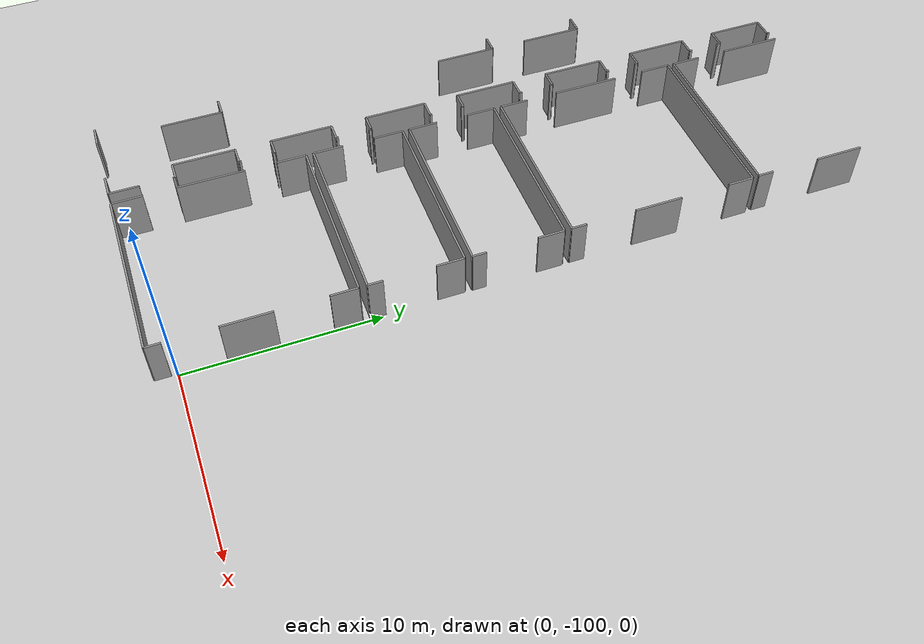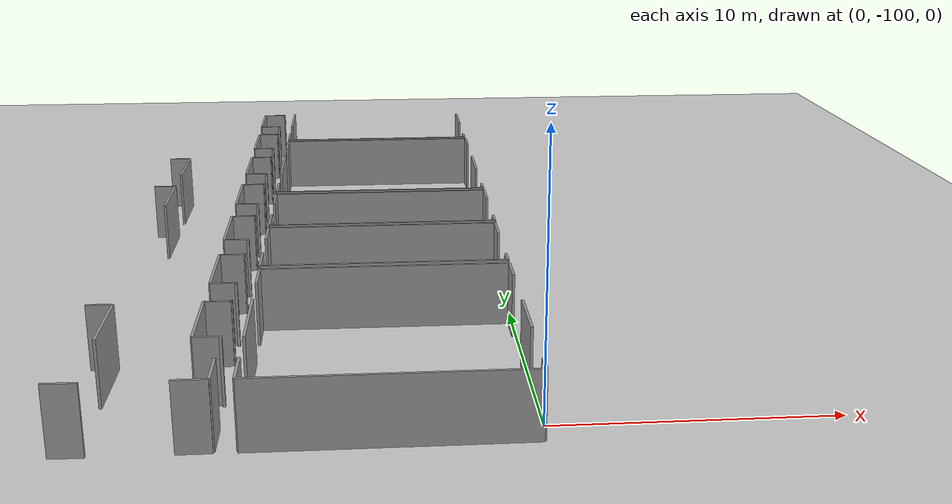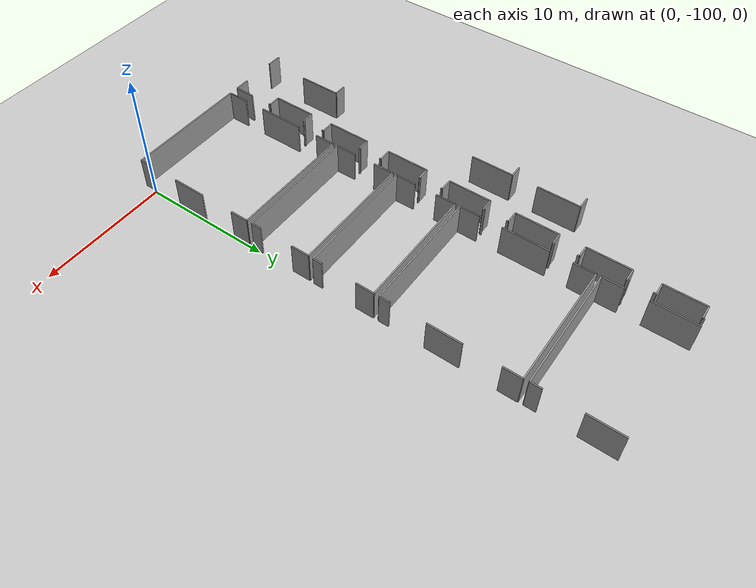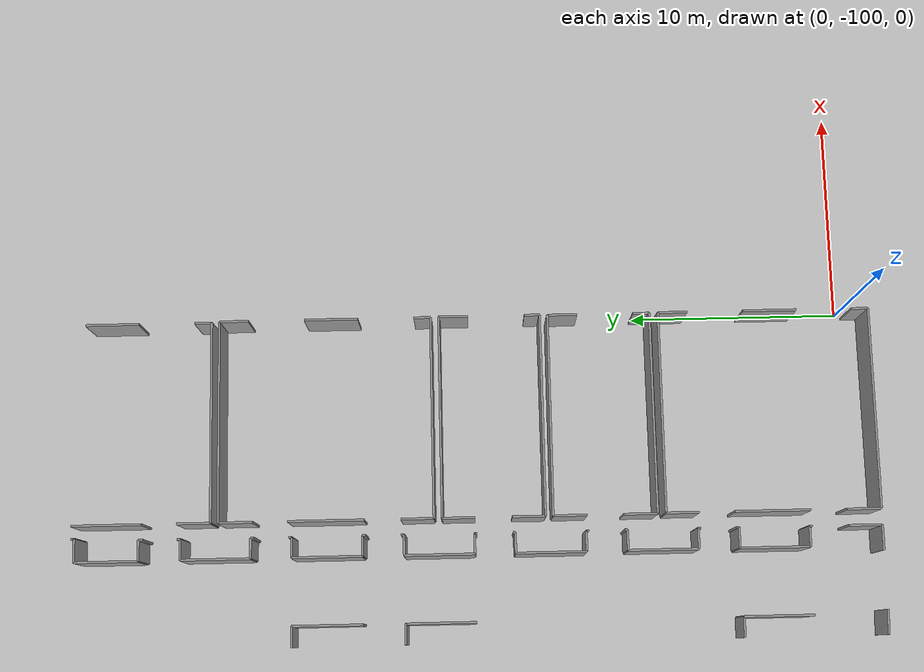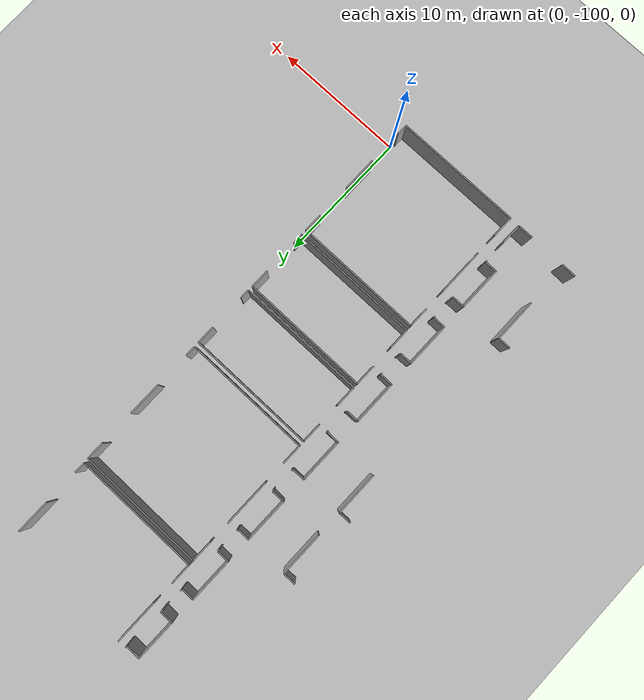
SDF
<sdf version="1.6">
 <world name="default">
  <model name="ground_plane">
   <static>1</static>
   <link name="link">
    <collision name="collision">
     <geometry><plane><normal>0 0 1</normal><size>100 100</size></plane></geometry>
     <surface><friction><ode><mu>100</mu><mu2>50</mu2></ode></friction></surface>
    </collision>
    <visual name="visual">
     <cast_shadows>0</cast_shadows>
     <geometry><plane><normal>0 0 1</normal><size>100 100</size></plane></geometry>
     <material>
      <script><uri>file://media/materials/scripts/gazebo.material</uri><name>Gazebo/Grey</name></script>
     </material>
    </visual>
   </link>
  </model>
  <model name="0510045926_A-40">
   <static>1</static>
   <link name="Wall_1629">
    <collision name="Wall_1629_Collision">
     <geometry><box><size>1.61870252502 0.1 2.5</size></box></geometry>
     <pose>0.809351262509 0 1.25 0 0 0</pose>
    </collision>
    <visual name="Wall_1629_Visual">
     <pose>0.809351262509 0 1.25 0 0 0</pose>
     <geometry><box><size>1.61870252502 0.1 2.5</size></box></geometry>
     <material>
      <script><uri>file://media/materials/scripts/gazebo.material</uri><name>Gazebo/Grey</name></script>
      <ambient>1 1 1 1</ambient>
     </material>
    </visual>
    <pose>124.256322065 -202.213233661 0 0 0 1.57079632679</pose>
   </link>
   <link name="Wall_1630">
    <collision name="Wall_1630_Collision">
     <geometry><box><size>3.54505244855 0.1 2.5</size></box></geometry>
     <pose>1.77252622428 0 1.25 0 0 0</pose>
    </collision>
    <visual name="Wall_1630_Visual">
     <pose>1.77252622428 0 1.25 0 0 0</pose>
     <geometry><box><size>3.54505244855 0.1 2.5</size></box></geometry>
     <material>
      <script><uri>file://media/materials/scripts/gazebo.material</uri><name>Gazebo/Grey</name></script>
      <ambient>1 1 1 1</ambient>
     </material>
    </visual>
    <pose>124.256322065 -198.91922352 0 0 0 1.57079632679</pose>
   </link>
   <link name="Wall_1631">
    <collision name="Wall_1631_Collision">
     <geometry><box><size>1.55625924116 0.1 2.5</size></box></geometry>
     <pose>0.778129620581 0 1.25 0 0 0</pose>
    </collision>
    <visual name="Wall_1631_Visual">
     <pose>0.778129620581 0 1.25 0 0 0</pose>
     <geometry><box><size>1.55625924116 0.1 2.5</size></box></geometry>
     <material>
      <script><uri>file://media/materials/scripts/gazebo.material</uri><name>Gazebo/Grey</name></script>
      <ambient>1 1 1 1</ambient>
     </material>
    </visual>
    <pose>124.256322065 -193.702670973 0 0 0 1.57079632679</pose>
   </link>
   <link name="Wall_1632">
    <collision name="Wall_1632_Collision">
     <geometry><box><size>9.55991445778 0.1 2.5</size></box></geometry>
     <pose>4.77995722889 0 1.25 0 0 0</pose>
    </collision>
    <visual name="Wall_1632_Visual">
     <pose>4.77995722889 0 1.25 0 0 0</pose>
     <geometry><box><size>9.55991445778 0.1 2.5</size></box></geometry>
     <material>
      <script><uri>file://media/materials/scripts/gazebo.material</uri><name>Gazebo/Grey</name></script>
      <ambient>1 1 1 1</ambient>
     </material>
    </visual>
    <pose>124.256322065 -192.146411732 0 0 0 0.0</pose>
   </link>
   <link name="Wall_1633">
    <collision name="Wall_1633_Collision">
     <geometry><box><size>1.40015103152 0.1 2.5</size></box></geometry>
     <pose>0.70007551576 0 1.25 0 0 0</pose>
    </collision>
    <visual name="Wall_1633_Visual">
     <pose>0.70007551576 0 1.25 0 0 0</pose>
     <geometry><box><size>1.40015103152 0.1 2.5</size></box></geometry>
     <material>
      <script><uri>file://media/materials/scripts/gazebo.material</uri><name>Gazebo/Grey</name></script>
      <ambient>1 1 1 1</ambient>
     </material>
    </visual>
    <pose>133.816236523 -192.146411732 0 0 0 -1.57079632679</pose>
   </link>
   <link name="Wall_1634">
    <collision name="Wall_1634_Collision">
     <geometry><box><size>2.56423598992 0.1 2.5</size></box></geometry>
     <pose>1.28211799496 0 1.25 0 0 0</pose>
    </collision>
    <visual name="Wall_1634_Visual">
     <pose>1.28211799496 0 1.25 0 0 0</pose>
     <geometry><box><size>2.56423598992 0.1 2.5</size></box></geometry>
     <material>
      <script><uri>file://media/materials/scripts/gazebo.material</uri><name>Gazebo/Grey</name></script>
      <ambient>1 1 1 1</ambient>
     </material>
    </visual>
    <pose>133.816236523 -196.208525031 0 0 0 -1.57079632679</pose>
   </link>
   <link name="Wall_1635">
    <collision name="Wall_1635_Collision">
     <geometry><box><size>0.791202096673 0.1 2.5</size></box></geometry>
     <pose>0.395601048336 0 1.25 0 0 0</pose>
    </collision>
    <visual name="Wall_1635_Visual">
     <pose>0.395601048336 0 1.25 0 0 0</pose>
     <geometry><box><size>0.791202096673 0.1 2.5</size></box></geometry>
     <material>
      <script><uri>file://media/materials/scripts/gazebo.material</uri><name>Gazebo/Grey</name></script>
      <ambient>1 1 1 1</ambient>
     </material>
    </visual>
    <pose>133.816236523 -201.403247812 0 0 0 -1.57079632679</pose>
   </link>
   <link name="Wall_1636">
    <collision name="Wall_1636_Collision">
     <geometry><box><size>9.55993291134 0.1 2.5</size></box></geometry>
     <pose>4.77996645567 0 1.25 0 0 0</pose>
    </collision>
    <visual name="Wall_1636_Visual">
     <pose>4.77996645567 0 1.25 0 0 0</pose>
     <geometry><box><size>9.55993291134 0.1 2.5</size></box></geometry>
     <material>
      <script><uri>file://media/materials/scripts/gazebo.material</uri><name>Gazebo/Grey</name></script>
      <ambient>1 1 1 1</ambient>
     </material>
    </visual>
    <pose>133.816236523 -202.194449909 0 0 0 -3.13962781092</pose>
   </link>
   <link name="Wall_1637">
    <collision name="Wall_1637_Collision">
     <geometry><box><size>1.58748088309 0.1 2.5</size></box></geometry>
     <pose>0.793740441545 0 1.25 0 0 0</pose>
    </collision>
    <visual name="Wall_1637_Visual">
     <pose>0.793740441545 0 1.25 0 0 0</pose>
     <geometry><box><size>1.58748088309 0.1 2.5</size></box></geometry>
     <material>
      <script><uri>file://media/materials/scripts/gazebo.material</uri><name>Gazebo/Grey</name></script>
      <ambient>1 1 1 1</ambient>
     </material>
    </visual>
    <pose>124.237792148 -191.753475946 0 0 0 1.57079632679</pose>
   </link>
   <link name="Wall_1638">
    <collision name="Wall_1638_Collision">
     <geometry><box><size>1.5892577245 0.1 2.5</size></box></geometry>
     <pose>0.79462886225 0 1.25 0 0 0</pose>
    </collision>
    <visual name="Wall_1638_Visual">
     <pose>0.79462886225 0 1.25 0 0 0</pose>
     <geometry><box><size>1.5892577245 0.1 2.5</size></box></geometry>
     <material>
      <script><uri>file://media/materials/scripts/gazebo.material</uri><name>Gazebo/Grey</name></script>
      <ambient>1 1 1 1</ambient>
     </material>
    </visual>
    <pose>124.237792148 -188.455404454 0 0 0 1.57079632679</pose>
   </link>
   <link name="Wall_1639">
    <collision name="Wall_1639_Collision">
     <geometry><box><size>9.57032167175 0.1 2.5</size></box></geometry>
     <pose>4.78516083588 0 1.25 0 0 0</pose>
    </collision>
    <visual name="Wall_1639_Visual">
     <pose>4.78516083588 0 1.25 0 0 0</pose>
     <geometry><box><size>9.57032167175 0.1 2.5</size></box></geometry>
     <material>
      <script><uri>file://media/materials/scripts/gazebo.material</uri><name>Gazebo/Grey</name></script>
      <ambient>1 1 1 1</ambient>
     </material>
    </visual>
    <pose>124.237792148 -186.866146729 0 0 0 0.0</pose>
   </link>
   <link name="Wall_1640">
    <collision name="Wall_1640_Collision">
     <geometry><box><size>1.42781899063 0.1 2.5</size></box></geometry>
     <pose>0.713909495314 0 1.25 0 0 0</pose>
    </collision>
    <visual name="Wall_1640_Visual">
     <pose>0.713909495314 0 1.25 0 0 0</pose>
     <geometry><box><size>1.42781899063 0.1 2.5</size></box></geometry>
     <material>
      <script><uri>file://media/materials/scripts/gazebo.material</uri><name>Gazebo/Grey</name></script>
      <ambient>1 1 1 1</ambient>
     </material>
    </visual>
    <pose>133.808113819 -186.866146729 0 0 0 -1.57079632679</pose>
   </link>
   <link name="Wall_1641">
    <collision name="Wall_1641_Collision">
     <geometry><box><size>0.778764206799 0.1 2.5</size></box></geometry>
     <pose>0.389382103399 0 1.25 0 0 0</pose>
    </collision>
    <visual name="Wall_1641_Visual">
     <pose>0.389382103399 0 1.25 0 0 0</pose>
     <geometry><box><size>0.778764206799 0.1 2.5</size></box></geometry>
     <material>
      <script><uri>file://media/materials/scripts/gazebo.material</uri><name>Gazebo/Grey</name></script>
      <ambient>1 1 1 1</ambient>
     </material>
    </visual>
    <pose>133.808113819 -190.952374304 0 0 0 -1.57079632679</pose>
   </link>
   <link name="Wall_1642">
    <collision name="Wall_1642_Collision">
     <geometry><box><size>9.57034773986 0.1 2.5</size></box></geometry>
     <pose>4.78517386993 0 1.25 0 0 0</pose>
    </collision>
    <visual name="Wall_1642_Visual">
     <pose>4.78517386993 0 1.25 0 0 0</pose>
     <geometry><box><size>9.57034773986 0.1 2.5</size></box></geometry>
     <material>
      <script><uri>file://media/materials/scripts/gazebo.material</uri><name>Gazebo/Grey</name></script>
      <ambient>1 1 1 1</ambient>
     </material>
    </visual>
    <pose>133.808113819 -191.731138511 0 0 0 -3.13925862605</pose>
   </link>
   <link name="Wall_1643">
    <collision name="Wall_1643_Collision">
     <geometry><box><size>1.5554977377 0.1 2.5</size></box></geometry>
     <pose>0.77774886885 0 1.25 0 0 0</pose>
    </collision>
    <visual name="Wall_1643_Visual">
     <pose>0.77774886885 0 1.25 0 0 0</pose>
     <geometry><box><size>1.5554977377 0.1 2.5</size></box></geometry>
     <material>
      <script><uri>file://media/materials/scripts/gazebo.material</uri><name>Gazebo/Grey</name></script>
      <ambient>1 1 1 1</ambient>
     </material>
    </visual>
    <pose>124.232715458 -186.508240102 0 0 0 1.57079632679</pose>
   </link>
   <link name="Wall_1644">
    <collision name="Wall_1644_Collision">
     <geometry><box><size>1.54915187552 0.1 2.5</size></box></geometry>
     <pose>0.77457593776 0 1.25 0 0 0</pose>
    </collision>
    <visual name="Wall_1644_Visual">
     <pose>0.77457593776 0 1.25 0 0 0</pose>
     <geometry><box><size>1.54915187552 0.1 2.5</size></box></geometry>
     <material>
      <script><uri>file://media/materials/scripts/gazebo.material</uri><name>Gazebo/Grey</name></script>
      <ambient>1 1 1 1</ambient>
     </material>
    </visual>
    <pose>124.232715458 -183.222606499 0 0 0 1.57079632679</pose>
   </link>
   <link name="Wall_1645">
    <collision name="Wall_1645_Collision">
     <geometry><box><size>9.59824346535 0.1 2.5</size></box></geometry>
     <pose>4.79912173267 0 1.25 0 0 0</pose>
    </collision>
    <visual name="Wall_1645_Visual">
     <pose>4.79912173267 0 1.25 0 0 0</pose>
     <geometry><box><size>9.59824346535 0.1 2.5</size></box></geometry>
     <material>
      <script><uri>file://media/materials/scripts/gazebo.material</uri><name>Gazebo/Grey</name></script>
      <ambient>1 1 1 1</ambient>
     </material>
    </visual>
    <pose>124.232715458 -181.673454624 0 0 0 0.0</pose>
   </link>
   <link name="Wall_1646">
    <collision name="Wall_1646_Collision">
     <geometry><box><size>1.3965973487 0.1 2.5</size></box></geometry>
     <pose>0.698298674349 0 1.25 0 0 0</pose>
    </collision>
    <visual name="Wall_1646_Visual">
     <pose>0.698298674349 0 1.25 0 0 0</pose>
     <geometry><box><size>1.3965973487 0.1 2.5</size></box></geometry>
     <material>
      <script><uri>file://media/materials/scripts/gazebo.material</uri><name>Gazebo/Grey</name></script>
      <ambient>1 1 1 1</ambient>
     </material>
    </visual>
    <pose>133.830958923 -181.673454624 0 0 0 -1.57079632679</pose>
   </link>
   <link name="Wall_1647">
    <collision name="Wall_1647_Collision">
     <geometry><box><size>0.733073999099 0.1 2.5</size></box></geometry>
     <pose>0.366536999549 0 1.25 0 0 0</pose>
    </collision>
    <visual name="Wall_1647_Visual">
     <pose>0.366536999549 0 1.25 0 0 0</pose>
     <geometry><box><size>0.733073999099 0.1 2.5</size></box></geometry>
     <material>
      <script><uri>file://media/materials/scripts/gazebo.material</uri><name>Gazebo/Grey</name></script>
      <ambient>1 1 1 1</ambient>
     </material>
    </visual>
    <pose>133.830958923 -185.760189868 0 0 0 -1.57079632679</pose>
   </link>
   <link name="Wall_1648">
    <collision name="Wall_1648_Collision">
     <geometry><box><size>9.59825514913 0.1 2.5</size></box></geometry>
     <pose>4.79912757456 0 1.25 0 0 0</pose>
    </collision>
    <visual name="Wall_1648_Visual">
     <pose>4.79912757456 0 1.25 0 0 0</pose>
     <geometry><box><size>9.59825514913 0.1 2.5</size></box></geometry>
     <material>
      <script><uri>file://media/materials/scripts/gazebo.material</uri><name>Gazebo/Grey</name></script>
      <ambient>1 1 1 1</ambient>
     </material>
    </visual>
    <pose>133.830958923 -186.493263867 0 0 0 -3.14003234491</pose>
   </link>
   <link name="Wall_1649">
    <collision name="Wall_1649_Collision">
     <geometry><box><size>1.54712119962 0.1 2.5</size></box></geometry>
     <pose>0.773560599811 0 1.25 0 0 0</pose>
    </collision>
    <visual name="Wall_1649_Visual">
     <pose>0.773560599811 0 1.25 0 0 0</pose>
     <geometry><box><size>1.54712119962 0.1 2.5</size></box></geometry>
     <material>
      <script><uri>file://media/materials/scripts/gazebo.material</uri><name>Gazebo/Grey</name></script>
      <ambient>1 1 1 1</ambient>
     </material>
    </visual>
    <pose>124.237030644 -181.289403045 0 0 0 1.57079632679</pose>
   </link>
   <link name="Wall_1650">
    <collision name="Wall_1650_Collision">
     <geometry><box><size>3.55723650394 0.1 2.5</size></box></geometry>
     <pose>1.77861825197 0 1.25 0 0 0</pose>
    </collision>
    <visual name="Wall_1650_Visual">
     <pose>1.77861825197 0 1.25 0 0 0</pose>
     <geometry><box><size>3.55723650394 0.1 2.5</size></box></geometry>
     <material>
      <script><uri>file://media/materials/scripts/gazebo.material</uri><name>Gazebo/Grey</name></script>
      <ambient>1 1 1 1</ambient>
     </material>
    </visual>
    <pose>124.237030644 -178.02229936 0 0 0 1.57079632679</pose>
   </link>
   <link name="Wall_1651">
    <collision name="Wall_1651_Collision">
     <geometry><box><size>1.61565651117 0.1 2.5</size></box></geometry>
     <pose>0.807828255586 0 1.25 0 0 0</pose>
    </collision>
    <visual name="Wall_1651_Visual">
     <pose>0.807828255586 0 1.25 0 0 0</pose>
     <geometry><box><size>1.61565651117 0.1 2.5</size></box></geometry>
     <material>
      <script><uri>file://media/materials/scripts/gazebo.material</uri><name>Gazebo/Grey</name></script>
      <ambient>1 1 1 1</ambient>
     </material>
    </visual>
    <pose>124.237030644 -172.82706891 0 0 0 1.57079632679</pose>
   </link>
   <link name="Wall_1652">
    <collision name="Wall_1652_Collision">
     <geometry><box><size>9.57945971329 0.1 2.5</size></box></geometry>
     <pose>4.78972985665 0 1.25 0 0 0</pose>
    </collision>
    <visual name="Wall_1652_Visual">
     <pose>4.78972985665 0 1.25 0 0 0</pose>
     <geometry><box><size>9.57945971329 0.1 2.5</size></box></geometry>
     <material>
      <script><uri>file://media/materials/scripts/gazebo.material</uri><name>Gazebo/Grey</name></script>
      <ambient>1 1 1 1</ambient>
     </material>
    </visual>
    <pose>124.237030644 -171.211412399 0 0 0 0.0</pose>
   </link>
   <link name="Wall_1653">
    <collision name="Wall_1653_Collision">
     <geometry><box><size>1.38365178985 0.1 2.5</size></box></geometry>
     <pose>0.691825894925 0 1.25 0 0 0</pose>
    </collision>
    <visual name="Wall_1653_Visual">
     <pose>0.691825894925 0 1.25 0 0 0</pose>
     <geometry><box><size>1.38365178985 0.1 2.5</size></box></geometry>
     <material>
      <script><uri>file://media/materials/scripts/gazebo.material</uri><name>Gazebo/Grey</name></script>
      <ambient>1 1 1 1</ambient>
     </material>
    </visual>
    <pose>133.816490357 -171.211412399 0 0 0 -1.57079632679</pose>
   </link>
   <link name="Wall_1654">
    <collision name="Wall_1654_Collision">
     <geometry><box><size>2.56017463813 0.1 2.5</size></box></geometry>
     <pose>1.28008731906 0 1.25 0 0 0</pose>
    </collision>
    <visual name="Wall_1654_Visual">
     <pose>1.28008731906 0 1.25 0 0 0</pose>
     <geometry><box><size>2.56017463813 0.1 2.5</size></box></geometry>
     <material>
      <script><uri>file://media/materials/scripts/gazebo.material</uri><name>Gazebo/Grey</name></script>
      <ambient>1 1 1 1</ambient>
     </material>
    </visual>
    <pose>133.816490357 -175.25499578 0 0 0 -1.57079632679</pose>
   </link>
   <link name="Wall_1655">
    <collision name="Wall_1655_Collision">
     <geometry><box><size>0.803639986547 0.1 2.5</size></box></geometry>
     <pose>0.401819993273 0 1.25 0 0 0</pose>
    </collision>
    <visual name="Wall_1655_Visual">
     <pose>0.401819993273 0 1.25 0 0 0</pose>
     <geometry><box><size>0.803639986547 0.1 2.5</size></box></geometry>
     <material>
      <script><uri>file://media/materials/scripts/gazebo.material</uri><name>Gazebo/Grey</name></script>
      <ambient>1 1 1 1</ambient>
     </material>
    </visual>
    <pose>133.816490357 -180.481955541 0 0 0 -1.57079632679</pose>
   </link>
   <link name="Wall_1656">
    <collision name="Wall_1656_Collision">
     <geometry><box><size>9.57946046997 0.1 2.5</size></box></geometry>
     <pose>4.78973023499 0 1.25 0 0 0</pose>
    </collision>
    <visual name="Wall_1656_Visual">
     <pose>4.78973023499 0 1.25 0 0 0</pose>
     <geometry><box><size>9.57946046997 0.1 2.5</size></box></geometry>
     <material>
      <script><uri>file://media/materials/scripts/gazebo.material</uri><name>Gazebo/Grey</name></script>
      <ambient>1 1 1 1</ambient>
     </material>
    </visual>
    <pose>133.816490357 -181.285595527 0 0 0 -3.1411951868</pose>
   </link>
   <link name="Wall_1657">
    <collision name="Wall_1657_Collision">
     <geometry><box><size>1.57656600014 0.1 2.5</size></box></geometry>
     <pose>0.78828300007 0 1.25 0 0 0</pose>
    </collision>
    <visual name="Wall_1657_Visual">
     <pose>0.78828300007 0 1.25 0 0 0</pose>
     <geometry><box><size>1.57656600014 0.1 2.5</size></box></geometry>
     <material>
      <script><uri>file://media/materials/scripts/gazebo.material</uri><name>Gazebo/Grey</name></script>
      <ambient>1 1 1 1</ambient>
     </material>
    </visual>
    <pose>124.237030644 -170.860105468 0 0 0 1.57079632679</pose>
   </link>
   <link name="Wall_1658">
    <collision name="Wall_1658_Collision">
     <geometry><box><size>3.29477164415 0.1 2.5</size></box></geometry>
     <pose>1.64738582207 0 1.25 0 0 0</pose>
    </collision>
    <visual name="Wall_1658_Visual">
     <pose>1.64738582207 0 1.25 0 0 0</pose>
     <geometry><box><size>3.29477164415 0.1 2.5</size></box></geometry>
     <material>
      <script><uri>file://media/materials/scripts/gazebo.material</uri><name>Gazebo/Grey</name></script>
      <ambient>1 1 1 1</ambient>
     </material>
    </visual>
    <pose>124.237030644 -167.637168984 0 0 0 1.57079632679</pose>
   </link>
   <link name="Wall_1663">
    <collision name="Wall_1663_Collision">
     <geometry><box><size>2.55738245877 0.1 2.5</size></box></geometry>
     <pose>1.27869122938 0 1.25 0 0 0</pose>
    </collision>
    <visual name="Wall_1663_Visual">
     <pose>1.27869122938 0 1.25 0 0 0</pose>
     <geometry><box><size>2.55738245877 0.1 2.5</size></box></geometry>
     <material>
      <script><uri>file://media/materials/scripts/gazebo.material</uri><name>Gazebo/Grey</name></script>
      <ambient>1 1 1 1</ambient>
     </material>
    </visual>
    <pose>133.775115336 -164.8249367 0 0 0 -1.57079632679</pose>
   </link>
   <link name="Wall_1664">
    <collision name="Wall_1664_Collision">
     <geometry><box><size>0.82623125591 0.1 2.5</size></box></geometry>
     <pose>0.413115627955 0 1.25 0 0 0</pose>
    </collision>
    <visual name="Wall_1664_Visual">
     <pose>0.413115627955 0 1.25 0 0 0</pose>
     <geometry><box><size>0.82623125591 0.1 2.5</size></box></geometry>
     <material>
      <script><uri>file://media/materials/scripts/gazebo.material</uri><name>Gazebo/Grey</name></script>
      <ambient>1 1 1 1</ambient>
     </material>
    </visual>
    <pose>133.775115336 -170.02016715 0 0 0 -1.57079632679</pose>
   </link>
   <link name="Wall_1665">
    <collision name="Wall_1665_Collision">
     <geometry><box><size>9.538094541 0.1 2.5</size></box></geometry>
     <pose>4.7690472705 0 1.25 0 0 0</pose>
    </collision>
    <visual name="Wall_1665_Visual">
     <pose>4.7690472705 0 1.25 0 0 0</pose>
     <geometry><box><size>9.538094541 0.1 2.5</size></box></geometry>
     <material>
      <script><uri>file://media/materials/scripts/gazebo.material</uri><name>Gazebo/Grey</name></script>
      <ambient>1 1 1 1</ambient>
     </material>
    </visual>
    <pose>133.775115336 -170.846398406 0 0 0 -3.14015556708</pose>
   </link>
   <link name="Wall_1680">
    <collision name="Wall_1680_Collision">
     <geometry><box><size>3.27548022312 0.1 2.5</size></box></geometry>
     <pose>1.63774011156 0 1.25 0 0 0</pose>
    </collision>
    <visual name="Wall_1680_Visual">
     <pose>1.63774011156 0 1.25 0 0 0</pose>
     <geometry><box><size>3.27548022312 0.1 2.5</size></box></geometry>
     <material>
      <script><uri>file://media/materials/scripts/gazebo.material</uri><name>Gazebo/Grey</name></script>
      <ambient>1 1 1 1</ambient>
     </material>
    </visual>
    <pose>119.401737497 -198.817182056 0 0 0 1.57079632679</pose>
   </link>
   <link name="Wall_1681">
    <collision name="Wall_1681_Collision">
     <geometry><box><size>0.959748196189 0.1 2.5</size></box></geometry>
     <pose>0.479874098094 0 1.25 0 0 0</pose>
    </collision>
    <visual name="Wall_1681_Visual">
     <pose>0.479874098094 0 1.25 0 0 0</pose>
     <geometry><box><size>0.959748196189 0.1 2.5</size></box></geometry>
     <material>
      <script><uri>file://media/materials/scripts/gazebo.material</uri><name>Gazebo/Grey</name></script>
      <ambient>1 1 1 1</ambient>
     </material>
    </visual>
    <pose>119.401737497 -195.541701833 0 0 0 3.14159265359</pose>
   </link>
   <link name="Wall_1695">
    <collision name="Wall_1695_Collision">
     <geometry><box><size>3.27624172658 0.1 2.5</size></box></geometry>
     <pose>1.63812086329 0 1.25 0 0 0</pose>
    </collision>
    <visual name="Wall_1695_Visual">
     <pose>1.63812086329 0 1.25 0 0 0</pose>
     <geometry><box><size>3.27624172658 0.1 2.5</size></box></geometry>
     <material>
      <script><uri>file://media/materials/scripts/gazebo.material</uri><name>Gazebo/Grey</name></script>
      <ambient>1 1 1 1</ambient>
     </material>
    </visual>
    <pose>119.405037345 -183.187069671 0 0 0 1.57079632679</pose>
   </link>
   <link name="Wall_1696">
    <collision name="Wall_1696_Collision">
     <geometry><box><size>0.957463685804 0.1 2.5</size></box></geometry>
     <pose>0.478731842902 0 1.25 0 0 0</pose>
    </collision>
    <visual name="Wall_1696_Visual">
     <pose>0.478731842902 0 1.25 0 0 0</pose>
     <geometry><box><size>0.957463685804 0.1 2.5</size></box></geometry>
     <material>
      <script><uri>file://media/materials/scripts/gazebo.material</uri><name>Gazebo/Grey</name></script>
      <ambient>1 1 1 1</ambient>
     </material>
    </visual>
    <pose>119.405037345 -179.910827945 0 0 0 3.14159265359</pose>
   </link>
   <link name="Wall_1700">
    <collision name="Wall_1700_Collision">
     <geometry><box><size>3.30924020992 0.1 2.5</size></box></geometry>
     <pose>1.65462010496 0 1.25 0 0 0</pose>
    </collision>
    <visual name="Wall_1700_Visual">
     <pose>1.65462010496 0 1.25 0 0 0</pose>
     <geometry><box><size>3.30924020992 0.1 2.5</size></box></geometry>
     <material>
      <script><uri>file://media/materials/scripts/gazebo.material</uri><name>Gazebo/Grey</name></script>
      <ambient>1 1 1 1</ambient>
     </material>
    </visual>
    <pose>119.405798849 -177.949195027 0 0 0 1.57079632679</pose>
   </link>
   <link name="Wall_1701">
    <collision name="Wall_1701_Collision">
     <geometry><box><size>0.972693755037 0.1 2.5</size></box></geometry>
     <pose>0.486346877519 0 1.25 0 0 0</pose>
    </collision>
    <visual name="Wall_1701_Visual">
     <pose>0.486346877519 0 1.25 0 0 0</pose>
     <geometry><box><size>0.972693755037 0.1 2.5</size></box></geometry>
     <material>
      <script><uri>file://media/materials/scripts/gazebo.material</uri><name>Gazebo/Grey</name></script>
      <ambient>1 1 1 1</ambient>
     </material>
    </visual>
    <pose>119.405798849 -174.639954817 0 0 0 3.14159265359</pose>
   </link>
   <link name="Wall_1720">
    <collision name="Wall_1720_Collision">
     <geometry><box><size>0.14163964387 0.1 2.5</size></box></geometry>
     <pose>0.0708198219351 0 1.25 0 0 0</pose>
    </collision>
    <visual name="Wall_1720_Visual">
     <pose>0.0708198219351 0 1.25 0 0 0</pose>
     <geometry><box><size>0.14163964387 0.1 2.5</size></box></geometry>
     <material>
      <script><uri>file://media/materials/scripts/gazebo.material</uri><name>Gazebo/Grey</name></script>
      <ambient>1 1 1 1</ambient>
     </material>
    </visual>
    <pose>123.631635392 -164.378188003 0 0 0 -1.57079632679</pose>
   </link>
   <link name="Wall_1721">
    <collision name="Wall_1721_Collision">
     <geometry><box><size>1.0945343089 0.1 2.5</size></box></geometry>
     <pose>0.547267154452 0 1.25 0 0 0</pose>
    </collision>
    <visual name="Wall_1721_Visual">
     <pose>0.547267154452 0 1.25 0 0 0</pose>
     <geometry><box><size>1.0945343089 0.1 2.5</size></box></geometry>
     <material>
      <script><uri>file://media/materials/scripts/gazebo.material</uri><name>Gazebo/Grey</name></script>
      <ambient>1 1 1 1</ambient>
     </material>
    </visual>
    <pose>123.631635392 -164.519827646 0 0 0 3.14159265359</pose>
   </link>
   <link name="Wall_1722">
    <collision name="Wall_1722_Collision">
     <geometry><box><size>2.99550078371 0.1 2.5</size></box></geometry>
     <pose>1.49775039186 0 1.25 0 0 0</pose>
    </collision>
    <visual name="Wall_1722_Visual">
     <pose>1.49775039186 0 1.25 0 0 0</pose>
     <geometry><box><size>2.99550078371 0.1 2.5</size></box></geometry>
     <material>
      <script><uri>file://media/materials/scripts/gazebo.material</uri><name>Gazebo/Grey</name></script>
      <ambient>1 1 1 1</ambient>
     </material>
    </visual>
    <pose>122.537101083 -164.519827646 0 0 0 -1.57079632679</pose>
   </link>
   <link name="Wall_1723">
    <collision name="Wall_1723_Collision">
     <geometry><box><size>0.97878578273 0.1 2.5</size></box></geometry>
     <pose>0.489392891365 0 1.25 0 0 0</pose>
    </collision>
    <visual name="Wall_1723_Visual">
     <pose>0.489392891365 0 1.25 0 0 0</pose>
     <geometry><box><size>0.97878578273 0.1 2.5</size></box></geometry>
     <material>
      <script><uri>file://media/materials/scripts/gazebo.material</uri><name>Gazebo/Grey</name></script>
      <ambient>1 1 1 1</ambient>
     </material>
    </visual>
    <pose>122.537101083 -167.51532843 0 0 0 0.0</pose>
   </link>
   <link name="Wall_1724">
    <collision name="Wall_1724_Collision">
     <geometry><box><size>0.201290748368 0.1 2.5</size></box></geometry>
     <pose>0.100645374184 0 1.25 0 0 0</pose>
    </collision>
    <visual name="Wall_1724_Visual">
     <pose>0.100645374184 0 1.25 0 0 0</pose>
     <geometry><box><size>0.201290748368 0.1 2.5</size></box></geometry>
     <material>
      <script><uri>file://media/materials/scripts/gazebo.material</uri><name>Gazebo/Grey</name></script>
      <ambient>1 1 1 1</ambient>
     </material>
    </visual>
    <pose>123.515886866 -167.51532843 0 0 0 -1.57079632679</pose>
   </link>
   <link name="Wall_1725">
    <collision name="Wall_1725_Collision">
     <geometry><box><size>0.14443182323 0.1 2.5</size></box></geometry>
     <pose>0.0722159116148 0 1.25 0 0 0</pose>
    </collision>
    <visual name="Wall_1725_Visual">
     <pose>0.0722159116148 0 1.25 0 0 0</pose>
     <geometry><box><size>0.14443182323 0.1 2.5</size></box></geometry>
     <material>
      <script><uri>file://media/materials/scripts/gazebo.material</uri><name>Gazebo/Grey</name></script>
      <ambient>1 1 1 1</ambient>
     </material>
    </visual>
    <pose>123.515886866 -169.31704562 0 0 0 -1.57079632679</pose>
   </link>
   <link name="Wall_1726">
    <collision name="Wall_1726_Collision">
     <geometry><box><size>0.966347892856 0.1 2.5</size></box></geometry>
     <pose>0.483173946428 0 1.25 0 0 0</pose>
    </collision>
    <visual name="Wall_1726_Visual">
     <pose>0.483173946428 0 1.25 0 0 0</pose>
     <geometry><box><size>0.966347892856 0.1 2.5</size></box></geometry>
     <material>
      <script><uri>file://media/materials/scripts/gazebo.material</uri><name>Gazebo/Grey</name></script>
      <ambient>1 1 1 1</ambient>
     </material>
    </visual>
    <pose>123.515886866 -169.461477444 0 0 0 3.14159265359</pose>
   </link>
   <link name="Wall_1727">
    <collision name="Wall_1727_Collision">
     <geometry><box><size>3.27598789209 0.1 2.5</size></box></geometry>
     <pose>1.63799394605 0 1.25 0 0 0</pose>
    </collision>
    <visual name="Wall_1727_Visual">
     <pose>1.63799394605 0 1.25 0 0 0</pose>
     <geometry><box><size>3.27598789209 0.1 2.5</size></box></geometry>
     <material>
      <script><uri>file://media/materials/scripts/gazebo.material</uri><name>Gazebo/Grey</name></script>
      <ambient>1 1 1 1</ambient>
     </material>
    </visual>
    <pose>122.549538973 -169.461477444 0 0 0 -1.57079632679</pose>
   </link>
   <link name="Wall_1728">
    <collision name="Wall_1728_Collision">
     <geometry><box><size>0.945787299391 0.1 2.5</size></box></geometry>
     <pose>0.472893649696 0 1.25 0 0 0</pose>
    </collision>
    <visual name="Wall_1728_Visual">
     <pose>0.472893649696 0 1.25 0 0 0</pose>
     <geometry><box><size>0.945787299391 0.1 2.5</size></box></geometry>
     <material>
      <script><uri>file://media/materials/scripts/gazebo.material</uri><name>Gazebo/Grey</name></script>
      <ambient>1 1 1 1</ambient>
     </material>
    </visual>
    <pose>122.549538973 -172.737465336 0 0 0 0.0</pose>
   </link>
   <link name="Wall_1729">
    <collision name="Wall_1729_Collision">
     <geometry><box><size>0.161184899386 0.1 2.5</size></box></geometry>
     <pose>0.0805924496932 0 1.25 0 0 0</pose>
    </collision>
    <visual name="Wall_1729_Visual">
     <pose>0.0805924496932 0 1.25 0 0 0</pose>
     <geometry><box><size>0.161184899386 0.1 2.5</size></box></geometry>
     <material>
      <script><uri>file://media/materials/scripts/gazebo.material</uri><name>Gazebo/Grey</name></script>
      <ambient>1 1 1 1</ambient>
     </material>
    </visual>
    <pose>123.495326273 -172.737465336 0 0 0 -1.57079632679</pose>
   </link>
   <link name="Wall_1730">
    <collision name="Wall_1730_Collision">
     <geometry><box><size>0.12158671938 0.1 2.5</size></box></geometry>
     <pose>0.0607933596898 0 1.25 0 0 0</pose>
    </collision>
    <visual name="Wall_1730_Visual">
     <pose>0.0607933596898 0 1.25 0 0 0</pose>
     <geometry><box><size>0.12158671938 0.1 2.5</size></box></geometry>
     <material>
      <script><uri>file://media/materials/scripts/gazebo.material</uri><name>Gazebo/Grey</name></script>
      <ambient>1 1 1 1</ambient>
     </material>
    </visual>
    <pose>123.495326273 -174.521160277 0 0 0 -1.57079632679</pose>
   </link>
   <link name="Wall_1731">
    <collision name="Wall_1731_Collision">
     <geometry><box><size>0.946548802853 0.1 2.5</size></box></geometry>
     <pose>0.473274401427 0 1.25 0 0 0</pose>
    </collision>
    <visual name="Wall_1731_Visual">
     <pose>0.473274401427 0 1.25 0 0 0</pose>
     <geometry><box><size>0.946548802853 0.1 2.5</size></box></geometry>
     <material>
      <script><uri>file://media/materials/scripts/gazebo.material</uri><name>Gazebo/Grey</name></script>
      <ambient>1 1 1 1</ambient>
     </material>
    </visual>
    <pose>123.495326273 -174.642746997 0 0 0 3.14159265359</pose>
   </link>
   <link name="Wall_1732">
    <collision name="Wall_1732_Collision">
     <geometry><box><size>3.30390968569 0.1 2.5</size></box></geometry>
     <pose>1.65195484284 0 1.25 0 0 0</pose>
    </collision>
    <visual name="Wall_1732_Visual">
     <pose>1.65195484284 0 1.25 0 0 0</pose>
     <geometry><box><size>3.30390968569 0.1 2.5</size></box></geometry>
     <material>
      <script><uri>file://media/materials/scripts/gazebo.material</uri><name>Gazebo/Grey</name></script>
      <ambient>1 1 1 1</ambient>
     </material>
    </visual>
    <pose>122.54877747 -174.642746997 0 0 0 -1.57079632679</pose>
   </link>
   <link name="Wall_1733">
    <collision name="Wall_1733_Collision">
     <geometry><box><size>0.965586389395 0.1 2.5</size></box></geometry>
     <pose>0.482793194697 0 1.25 0 0 0</pose>
    </collision>
    <visual name="Wall_1733_Visual">
     <pose>0.482793194697 0 1.25 0 0 0</pose>
     <geometry><box><size>0.965586389395 0.1 2.5</size></box></geometry>
     <material>
      <script><uri>file://media/materials/scripts/gazebo.material</uri><name>Gazebo/Grey</name></script>
      <ambient>1 1 1 1</ambient>
     </material>
    </visual>
    <pose>122.54877747 -177.946656683 0 0 0 0.0</pose>
   </link>
   <link name="Wall_1734">
    <collision name="Wall_1734_Collision">
     <geometry><box><size>0.151793023359 0.1 2.5</size></box></geometry>
     <pose>0.0758965116796 0 1.25 0 0 0</pose>
    </collision>
    <visual name="Wall_1734_Visual">
     <pose>0.0758965116796 0 1.25 0 0 0</pose>
     <geometry><box><size>0.151793023359 0.1 2.5</size></box></geometry>
     <material>
      <script><uri>file://media/materials/scripts/gazebo.material</uri><name>Gazebo/Grey</name></script>
      <ambient>1 1 1 1</ambient>
     </material>
    </visual>
    <pose>123.514363859 -177.946656683 0 0 0 -1.57079632679</pose>
   </link>
   <link name="Wall_1735">
    <collision name="Wall_1735_Collision">
     <geometry><box><size>0.136309119639 0.1 2.5</size></box></geometry>
     <pose>0.0681545598193 0 1.25 0 0 0</pose>
    </collision>
    <visual name="Wall_1735_Visual">
     <pose>0.0681545598193 0 1.25 0 0 0</pose>
     <geometry><box><size>0.136309119639 0.1 2.5</size></box></geometry>
     <material>
      <script><uri>file://media/materials/scripts/gazebo.material</uri><name>Gazebo/Grey</name></script>
      <ambient>1 1 1 1</ambient>
     </material>
    </visual>
    <pose>123.514363859 -179.750150714 0 0 0 -1.57079632679</pose>
   </link>
   <link name="Wall_1736">
    <collision name="Wall_1736_Collision">
     <geometry><box><size>0.969901575678 0.1 2.5</size></box></geometry>
     <pose>0.484950787839 0 1.25 0 0 0</pose>
    </collision>
    <visual name="Wall_1736_Visual">
     <pose>0.484950787839 0 1.25 0 0 0</pose>
     <geometry><box><size>0.969901575678 0.1 2.5</size></box></geometry>
     <material>
      <script><uri>file://media/materials/scripts/gazebo.material</uri><name>Gazebo/Grey</name></script>
      <ambient>1 1 1 1</ambient>
     </material>
    </visual>
    <pose>123.514363859 -179.886459834 0 0 0 3.14159265359</pose>
   </link>
   <link name="Wall_1737">
    <collision name="Wall_1737_Collision">
     <geometry><box><size>3.29299480274 0.1 2.5</size></box></geometry>
     <pose>1.64649740137 0 1.25 0 0 0</pose>
    </collision>
    <visual name="Wall_1737_Visual">
     <pose>1.64649740137 0 1.25 0 0 0</pose>
     <geometry><box><size>3.29299480274 0.1 2.5</size></box></geometry>
     <material>
      <script><uri>file://media/materials/scripts/gazebo.material</uri><name>Gazebo/Grey</name></script>
      <ambient>1 1 1 1</ambient>
     </material>
    </visual>
    <pose>122.544462283 -179.886459834 0 0 0 -1.57079632679</pose>
   </link>
   <link name="Wall_1738">
    <collision name="Wall_1738_Collision">
     <geometry><box><size>0.957463685804 0.1 2.5</size></box></geometry>
     <pose>0.478731842902 0 1.25 0 0 0</pose>
    </collision>
    <visual name="Wall_1738_Visual">
     <pose>0.478731842902 0 1.25 0 0 0</pose>
     <geometry><box><size>0.957463685804 0.1 2.5</size></box></geometry>
     <material>
      <script><uri>file://media/materials/scripts/gazebo.material</uri><name>Gazebo/Grey</name></script>
      <ambient>1 1 1 1</ambient>
     </material>
    </visual>
    <pose>122.544462283 -183.179454637 0 0 0 0.0</pose>
   </link>
   <link name="Wall_1739">
    <collision name="Wall_1739_Collision">
     <geometry><box><size>0.120063712456 0.1 2.5</size></box></geometry>
     <pose>0.0600318562282 0 1.25 0 0 0</pose>
    </collision>
    <visual name="Wall_1739_Visual">
     <pose>0.0600318562282 0 1.25 0 0 0</pose>
     <geometry><box><size>0.120063712456 0.1 2.5</size></box></geometry>
     <material>
      <script><uri>file://media/materials/scripts/gazebo.material</uri><name>Gazebo/Grey</name></script>
      <ambient>1 1 1 1</ambient>
     </material>
    </visual>
    <pose>123.501925969 -183.179454637 0 0 0 -1.57079632679</pose>
   </link>
   <link name="Wall_1740">
    <collision name="Wall_1740_Collision">
     <geometry><box><size>0.0979801120679 0.1 2.5</size></box></geometry>
     <pose>0.048990056034 0 1.25 0 0 0</pose>
    </collision>
    <visual name="Wall_1740_Visual">
     <pose>0.048990056034 0 1.25 0 0 0</pose>
     <geometry><box><size>0.0979801120679 0.1 2.5</size></box></geometry>
     <material>
      <script><uri>file://media/materials/scripts/gazebo.material</uri><name>Gazebo/Grey</name></script>
      <ambient>1 1 1 1</ambient>
     </material>
    </visual>
    <pose>123.501925969 -184.979902654 0 0 0 -1.57079632679</pose>
   </link>
   <link name="Wall_1741">
    <collision name="Wall_1741_Collision">
     <geometry><box><size>0.96050969965 0.1 2.5</size></box></geometry>
     <pose>0.480254849825 0 1.25 0 0 0</pose>
    </collision>
    <visual name="Wall_1741_Visual">
     <pose>0.480254849825 0 1.25 0 0 0</pose>
     <geometry><box><size>0.96050969965 0.1 2.5</size></box></geometry>
     <material>
      <script><uri>file://media/materials/scripts/gazebo.material</uri><name>Gazebo/Grey</name></script>
      <ambient>1 1 1 1</ambient>
     </material>
    </visual>
    <pose>123.501925969 -185.077882767 0 0 0 3.14159265359</pose>
   </link>
   <link name="Wall_1742">
    <collision name="Wall_1742_Collision">
     <geometry><box><size>3.30644803056 0.1 2.5</size></box></geometry>
     <pose>1.65322401528 0 1.25 0 0 0</pose>
    </collision>
    <visual name="Wall_1742_Visual">
     <pose>1.65322401528 0 1.25 0 0 0</pose>
     <geometry><box><size>3.30644803056 0.1 2.5</size></box></geometry>
     <material>
      <script><uri>file://media/materials/scripts/gazebo.material</uri><name>Gazebo/Grey</name></script>
      <ambient>1 1 1 1</ambient>
     </material>
    </visual>
    <pose>122.54141627 -185.077882767 0 0 0 -1.57079632679</pose>
   </link>
   <link name="Wall_1743">
    <collision name="Wall_1743_Collision">
     <geometry><box><size>0.968124734267 0.1 2.5</size></box></geometry>
     <pose>0.484062367134 0 1.25 0 0 0</pose>
    </collision>
    <visual name="Wall_1743_Visual">
     <pose>0.484062367134 0 1.25 0 0 0</pose>
     <geometry><box><size>0.968124734267 0.1 2.5</size></box></geometry>
     <material>
      <script><uri>file://media/materials/scripts/gazebo.material</uri><name>Gazebo/Grey</name></script>
      <ambient>1 1 1 1</ambient>
     </material>
    </visual>
    <pose>122.54141627 -188.384330797 0 0 0 0.0</pose>
   </link>
   <link name="Wall_1744">
    <collision name="Wall_1744_Collision">
     <geometry><box><size>0.12793258156 0.1 2.5</size></box></geometry>
     <pose>0.0639662907801 0 1.25 0 0 0</pose>
    </collision>
    <visual name="Wall_1744_Visual">
     <pose>0.0639662907801 0 1.25 0 0 0</pose>
     <geometry><box><size>0.12793258156 0.1 2.5</size></box></geometry>
     <material>
      <script><uri>file://media/materials/scripts/gazebo.material</uri><name>Gazebo/Grey</name></script>
      <ambient>1 1 1 1</ambient>
     </material>
    </visual>
    <pose>123.509541004 -188.384330797 0 0 0 -1.57079632679</pose>
   </link>
   <link name="Wall_1745">
    <collision name="Wall_1745_Collision">
     <geometry><box><size>0.113210181301 0.1 2.5</size></box></geometry>
     <pose>0.0566050906506 0 1.25 0 0 0</pose>
    </collision>
    <visual name="Wall_1745_Visual">
     <pose>0.0566050906506 0 1.25 0 0 0</pose>
     <geometry><box><size>0.113210181301 0.1 2.5</size></box></geometry>
     <material>
      <script><uri>file://media/materials/scripts/gazebo.material</uri><name>Gazebo/Grey</name></script>
      <ambient>1 1 1 1</ambient>
     </material>
    </visual>
    <pose>123.509541004 -190.194932194 0 0 0 -1.57079632679</pose>
   </link>
   <link name="Wall_1746">
    <collision name="Wall_1746_Collision">
     <geometry><box><size>0.951879327085 0.1 2.5</size></box></geometry>
     <pose>0.475939663542 0 1.25 0 0 0</pose>
    </collision>
    <visual name="Wall_1746_Visual">
     <pose>0.475939663542 0 1.25 0 0 0</pose>
     <geometry><box><size>0.951879327085 0.1 2.5</size></box></geometry>
     <material>
      <script><uri>file://media/materials/scripts/gazebo.material</uri><name>Gazebo/Grey</name></script>
      <ambient>1 1 1 1</ambient>
     </material>
    </visual>
    <pose>123.509541004 -190.308142376 0 0 0 3.14159265359</pose>
   </link>
   <link name="Wall_1747">
    <collision name="Wall_1747_Collision">
     <geometry><box><size>3.30314818223 0.1 2.5</size></box></geometry>
     <pose>1.65157409111 0 1.25 0 0 0</pose>
    </collision>
    <visual name="Wall_1747_Visual">
     <pose>1.65157409111 0 1.25 0 0 0</pose>
     <geometry><box><size>3.30314818223 0.1 2.5</size></box></geometry>
     <material>
      <script><uri>file://media/materials/scripts/gazebo.material</uri><name>Gazebo/Grey</name></script>
      <ambient>1 1 1 1</ambient>
     </material>
    </visual>
    <pose>122.557661677 -190.308142376 0 0 0 -1.57079632679</pose>
   </link>
   <link name="Wall_1748">
    <collision name="Wall_1748_Collision">
     <geometry><box><size>0.955179175419 0.1 2.5</size></box></geometry>
     <pose>0.477589587709 0 1.25 0 0 0</pose>
    </collision>
    <visual name="Wall_1748_Visual">
     <pose>0.477589587709 0 1.25 0 0 0</pose>
     <geometry><box><size>0.955179175419 0.1 2.5</size></box></geometry>
     <material>
      <script><uri>file://media/materials/scripts/gazebo.material</uri><name>Gazebo/Grey</name></script>
      <ambient>1 1 1 1</ambient>
     </material>
    </visual>
    <pose>122.557661677 -193.611290558 0 0 0 0.0</pose>
   </link>
   <link name="Wall_1749">
    <collision name="Wall_1749_Collision">
     <geometry><box><size>0.130978595407 0.1 2.5</size></box></geometry>
     <pose>0.0654892977034 0 1.25 0 0 0</pose>
    </collision>
    <visual name="Wall_1749_Visual">
     <pose>0.0654892977034 0 1.25 0 0 0</pose>
     <geometry><box><size>0.130978595407 0.1 2.5</size></box></geometry>
     <material>
      <script><uri>file://media/materials/scripts/gazebo.material</uri><name>Gazebo/Grey</name></script>
      <ambient>1 1 1 1</ambient>
     </material>
    </visual>
    <pose>123.512840852 -193.611290558 0 0 0 -1.57079632679</pose>
   </link>
   <link name="Wall_1750">
    <collision name="Wall_1750_Collision">
     <geometry><box><size>0.111179505404 0.1 2.5</size></box></geometry>
     <pose>0.0555897527018 0 1.25 0 0 0</pose>
    </collision>
    <visual name="Wall_1750_Visual">
     <pose>0.0555897527018 0 1.25 0 0 0</pose>
     <geometry><box><size>0.111179505404 0.1 2.5</size></box></geometry>
     <material>
      <script><uri>file://media/materials/scripts/gazebo.material</uri><name>Gazebo/Grey</name></script>
      <ambient>1 1 1 1</ambient>
     </material>
    </visual>
    <pose>123.512840852 -195.402092865 0 0 0 -1.57079632679</pose>
   </link>
   <link name="Wall_1751">
    <collision name="Wall_1751_Collision">
     <geometry><box><size>0.96330187901 0.1 2.5</size></box></geometry>
     <pose>0.481650939505 0 1.25 0 0 0</pose>
    </collision>
    <visual name="Wall_1751_Visual">
     <pose>0.481650939505 0 1.25 0 0 0</pose>
     <geometry><box><size>0.96330187901 0.1 2.5</size></box></geometry>
     <material>
      <script><uri>file://media/materials/scripts/gazebo.material</uri><name>Gazebo/Grey</name></script>
      <ambient>1 1 1 1</ambient>
     </material>
    </visual>
    <pose>123.512840852 -195.513272371 0 0 0 3.14159265359</pose>
   </link>
   <link name="Wall_1752">
    <collision name="Wall_1752_Collision">
     <geometry><box><size>3.29299480274 0.1 2.5</size></box></geometry>
     <pose>1.64649740137 0 1.25 0 0 0</pose>
    </collision>
    <visual name="Wall_1752_Visual">
     <pose>1.64649740137 0 1.25 0 0 0</pose>
     <geometry><box><size>3.29299480274 0.1 2.5</size></box></geometry>
     <material>
      <script><uri>file://media/materials/scripts/gazebo.material</uri><name>Gazebo/Grey</name></script>
      <ambient>1 1 1 1</ambient>
     </material>
    </visual>
    <pose>122.549538973 -195.513272371 0 0 0 -1.57079632679</pose>
   </link>
   <link name="Wall_1753">
    <collision name="Wall_1753_Collision">
     <geometry><box><size>0.943248954519 0.1 2.5</size></box></geometry>
     <pose>0.47162447726 0 1.25 0 0 0</pose>
    </collision>
    <visual name="Wall_1753_Visual">
     <pose>0.47162447726 0 1.25 0 0 0</pose>
     <geometry><box><size>0.943248954519 0.1 2.5</size></box></geometry>
     <material>
      <script><uri>file://media/materials/scripts/gazebo.material</uri><name>Gazebo/Grey</name></script>
      <ambient>1 1 1 1</ambient>
     </material>
    </visual>
    <pose>122.549538973 -198.806267173 0 0 0 0.0</pose>
   </link>
   <link name="Wall_1754">
    <collision name="Wall_1754_Collision">
     <geometry><box><size>0.133009271305 0.1 2.5</size></box></geometry>
     <pose>0.0665046356523 0 1.25 0 0 0</pose>
    </collision>
    <visual name="Wall_1754_Visual">
     <pose>0.0665046356523 0 1.25 0 0 0</pose>
     <geometry><box><size>0.133009271305 0.1 2.5</size></box></geometry>
     <material>
      <script><uri>file://media/materials/scripts/gazebo.material</uri><name>Gazebo/Grey</name></script>
      <ambient>1 1 1 1</ambient>
     </material>
    </visual>
    <pose>123.492787928 -198.806267173 0 0 0 -1.57079632679</pose>
   </link>
   <link name="Wall_1755">
    <collision name="Wall_1755_Collision">
     <geometry><box><size>1.56362044129 0.1 2.5</size></box></geometry>
     <pose>0.781810220646 0 1.25 0 0 0</pose>
    </collision>
    <visual name="Wall_1755_Visual">
     <pose>0.781810220646 0 1.25 0 0 0</pose>
     <geometry><box><size>1.56362044129 0.1 2.5</size></box></geometry>
     <material>
      <script><uri>file://media/materials/scripts/gazebo.material</uri><name>Gazebo/Grey</name></script>
      <ambient>1 1 1 1</ambient>
     </material>
    </visual>
    <pose>123.492787928 -200.638952171 0 0 0 -1.57079632679</pose>
   </link>
   <link name="Wall_1756">
    <collision name="Wall_1756_Collision">
     <geometry><box><size>1.17982269661 0.1 2.5</size></box></geometry>
     <pose>0.589911348305 0 1.25 0 0 0</pose>
    </collision>
    <visual name="Wall_1756_Visual">
     <pose>0.589911348305 0 1.25 0 0 0</pose>
     <geometry><box><size>1.17982269661 0.1 2.5</size></box></geometry>
     <material>
      <script><uri>file://media/materials/scripts/gazebo.material</uri><name>Gazebo/Grey</name></script>
      <ambient>1 1 1 1</ambient>
     </material>
    </visual>
    <pose>123.492787928 -202.202572613 0 0 0 3.14159265359</pose>
   </link>
   <link name="Wall_1757">
    <collision name="Wall_1757_Collision">
     <geometry><box><size>1.15458061187 0.1 2.5</size></box></geometry>
     <pose>0.577290305935 0 1.25 0 0 0</pose>
    </collision>
    <visual name="Wall_1757_Visual">
     <pose>0.577290305935 0 1.25 0 0 0</pose>
     <geometry><box><size>1.15458061187 0.1 2.5</size></box></geometry>
     <material>
      <script><uri>file://media/materials/scripts/gazebo.material</uri><name>Gazebo/Grey</name></script>
      <ambient>1 1 1 1</ambient>
     </material>
    </visual>
    <pose>119.597443887 -202.202572613 0 0 0 3.1154275244</pose>
   </link>
   <pose>-133.95 101.113233661 0 0 0 0</pose>
  </model>
 </world>
</sdf>
